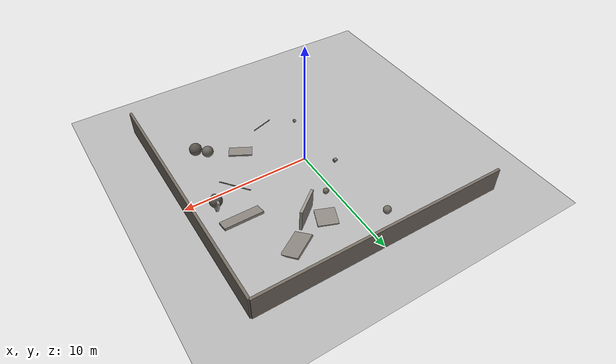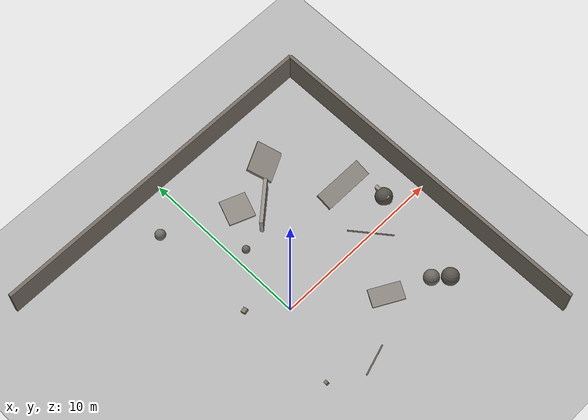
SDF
<sdf version="1.6">
 <world name="earthquake_disaster">
  <model name="ground_plane">
   <static>true</static>
   <pose>0 0 -0.05 0 0 0</pose>
   <link name="link">
    <collision name="col">
     <geometry><plane><normal>0 0 1</normal><size>25 25</size></plane></geometry>
     <surface><friction><ode><mu>2.0</mu><mu2>2.0</mu2></ode></friction></surface>
    </collision>
    <visual name="vis">
     <geometry><plane><normal>0 0 1</normal><size>25 25</size></plane></geometry>
     <material><ambient>0.7 0.7 0.7 1</ambient><diffuse>0.7 0.7 0.7 1</diffuse></material>
    </visual>
   </link>
  </model>
  <model name="boundary_north">
   <static>true</static>
   <pose>0 10 1 0 0 0</pose>
   <link name="link">
    <collision name="col"><geometry><box><size>20 0.2 2</size></box></geometry></collision>
    <visual name="vis">
     <geometry><box><size>20 0.2 2</size></box></geometry>
     <material><ambient>0.45 0.42 0.38 1</ambient><diffuse>0.45 0.42 0.38 1</diffuse></material>
    </visual>
   </link>
  </model>
  <model name="boundary_east">
   <static>true</static>
   <pose>10 0 1 0 0 1.5708</pose>
   <link name="link">
    <collision name="col"><geometry><box><size>20 0.2 2</size></box></geometry></collision>
    <visual name="vis">
     <geometry><box><size>20 0.2 2</size></box></geometry>
     <material><ambient>0.45 0.42 0.38 1</ambient><diffuse>0.45 0.42 0.38 1</diffuse></material>
    </visual>
   </link>
  </model>
  <model name="slab_2">
   <static>true</static>
   <pose>4.0 -3.0 0.3722 0.1 0.0 -0.5</pose>
   <link name="link">
    <collision name="col">
     <geometry><box><size>1.8 1.0 0.12</size></box></geometry>
     <surface><friction><ode><mu>2.0</mu><mu2>2.0</mu2></ode></friction></surface>
    </collision>
    <visual name="vis">
     <geometry><box><size>1.8 1.0 0.12</size></box></geometry>
     <material><ambient>0.55 0.53 0.5 1</ambient><diffuse>0.55 0.53 0.5 1</diffuse></material>
    </visual>
   </link>
  </model>
  <model name="slab_4">
   <static>true</static>
   <pose>2.0 6.0 0.2761 0.0 0.0 1.2</pose>
   <link name="link">
    <collision name="col">
     <geometry><box><size>1.5 1.5 0.1</size></box></geometry>
     <surface><friction><ode><mu>2.0</mu><mu2>2.0</mu2></ode></friction></surface>
    </collision>
    <visual name="vis">
     <geometry><box><size>1.5 1.5 0.1</size></box></geometry>
     <material><ambient>0.55 0.53 0.5 1</ambient><diffuse>0.55 0.53 0.5 1</diffuse></material>
    </visual>
   </link>
  </model>
  <model name="slab_5">
   <static>true</static>
   <pose>7.0 3.0 0.3016 0.3 0.0 0.0</pose>
   <link name="link">
    <collision name="col">
     <geometry><box><size>3.0 1.0 0.18</size></box></geometry>
     <surface><friction><ode><mu>2.0</mu><mu2>2.0</mu2></ode></friction></surface>
    </collision>
    <visual name="vis">
     <geometry><box><size>3.0 1.0 0.18</size></box></geometry>
     <material><ambient>0.55 0.53 0.5 1</ambient><diffuse>0.55 0.53 0.5 1</diffuse></material>
    </visual>
   </link>
  </model>
  <model name="slab_tilted_1">
   <static>true</static>
   <pose>5.0 7.0 0.2663 0.4 0.15 0.5</pose>
   <link name="link">
    <collision name="col">
     <geometry><box><size>2.0 1.5 0.15</size></box></geometry>
     <surface><friction><ode><mu>2.0</mu><mu2>2.0</mu2></ode></friction></surface>
    </collision>
    <visual name="vis">
     <geometry><box><size>2.0 1.5 0.15</size></box></geometry>
     <material><ambient>0.55 0.53 0.5 1</ambient><diffuse>0.55 0.53 0.5 1</diffuse></material>
    </visual>
   </link>
  </model>
  <model name="wall_broken_2">
   <static>true</static>
   <pose>3.0 5.0 0.7000 0.0 -0.1 0.7</pose>
   <link name="link">
    <collision name="col">
     <geometry><box><size>2.5 0.2 1.6</size></box></geometry>
     <surface><friction><ode><mu>2.0</mu><mu2>2.0</mu2></ode></friction></surface>
    </collision>
    <visual name="vis">
     <geometry><box><size>2.5 0.2 1.6</size></box></geometry>
     <material><ambient>0.6 0.58 0.55 1</ambient><diffuse>0.6 0.58 0.55 1</diffuse></material>
    </visual>
   </link>
  </model>
  <model name="wall_fragment_2">
   <static>true</static>
   <pose>8.0 1.0 0.5765 -0.2 0.1 1.5</pose>
   <link name="link">
    <collision name="col">
     <geometry><box><size>1.0 0.2 0.8</size></box></geometry>
     <surface><friction><ode><mu>2.0</mu><mu2>2.0</mu2></ode></friction></surface>
    </collision>
    <visual name="vis">
     <geometry><box><size>1.0 0.2 0.8</size></box></geometry>
     <material><ambient>0.6 0.58 0.55 1</ambient><diffuse>0.6 0.58 0.55 1</diffuse></material>
    </visual>
   </link>
  </model>
  <model name="rubble_3_4">
   <static>true</static>
   <pose>-1.7675196615228985 1.5723496434812192 0.2559 -0.171751620480491 -0.05937582447032844 0.18411515591264183</pose>
   <link name="link">
    <collision name="col">
     <geometry><box><size>0.28527339660162554 0.2471963714471273 0.21190694499419407</size></box></geometry>
     <surface><friction><ode><mu>2.0</mu><mu2>2.0</mu2></ode></friction></surface>
    </collision>
    <visual name="vis">
     <geometry><box><size>0.28527339660162554 0.2471963714471273 0.21190694499419407</size></box></geometry>
     <material>
      <ambient>0.5197391468828612 0.46973914688286117 0.4197391468828612 1</ambient>
      <diffuse>0.5197391468828612 0.46973914688286117 0.4197391468828612 1</diffuse>
     </material>
    </visual>
   </link>
  </model>
  <model name="rock_0">
   <static>true</static>
   <pose>-1.9364300963693424 7.764941500475615 0.3594 0.22750418366957165 0.21150374299508146 3.005977392299374</pose>
   <link name="link">
    <collision name="col">
     <geometry><sphere><radius>0.3060812232688608</radius></sphere></geometry>
     <surface><friction><ode><mu>2.0</mu><mu2>2.0</mu2></ode></friction></surface>
    </collision>
    <visual name="vis">
     <geometry><sphere><radius>0.3060812232688608</radius></sphere></geometry>
     <material>
      <ambient>0.45681412038971386 0.43681412038971384 0.4068141203897139 1</ambient>
      <diffuse>0.45681412038971386 0.43681412038971384 0.4068141203897139 1</diffuse>
     </material>
    </visual>
   </link>
  </model>
  <model name="rock_1">
   <static>true</static>
   <pose>7.9267630318834215 0.8922931744898914 0.6176 0.1483539127472821 0.4843546824845794 1.8186261131630446</pose>
   <link name="link">
    <collision name="col">
     <geometry><sphere><radius>0.4873633101185304</radius></sphere></geometry>
     <surface><friction><ode><mu>2.0</mu><mu2>2.0</mu2></ode></friction></surface>
    </collision>
    <visual name="vis">
     <geometry><sphere><radius>0.4873633101185304</radius></sphere></geometry>
     <material>
      <ambient>0.3309593650548128 0.3109593650548128 0.28095936505481284 1</ambient>
      <diffuse>0.3309593650548128 0.3109593650548128 0.28095936505481284 1</diffuse>
     </material>
    </visual>
   </link>
  </model>
  <model name="rock_2">
   <static>true</static>
   <pose>0.6751232219883878 3.9676089660650256 0.3286 0.2514251914597568 0.4263599460241427 0.4943387657299775</pose>
   <link name="link">
    <collision name="col">
     <geometry><sphere><radius>0.22286610916299324</radius></sphere></geometry>
     <surface><friction><ode><mu>2.0</mu><mu2>2.0</mu2></ode></friction></surface>
    </collision>
    <visual name="vis">
     <geometry><sphere><radius>0.22286610916299324</radius></sphere></geometry>
     <material>
      <ambient>0.41683551889179427 0.39683551889179425 0.3668355188917943 1</ambient>
      <diffuse>0.41683551889179427 0.39683551889179425 0.3668355188917943 1</diffuse>
     </material>
    </visual>
   </link>
  </model>
  <model name="rock_4">
   <static>true</static>
   <pose>6.244597026071 -4.060554435382002 0.6633 0.20961245766793624 0.29183614464561236 1.641537726770351</pose>
   <link name="link">
    <collision name="col">
     <geometry><sphere><radius>0.43780766141337646</radius></sphere></geometry>
     <surface><friction><ode><mu>2.0</mu><mu2>2.0</mu2></ode></friction></surface>
    </collision>
    <visual name="vis">
     <geometry><sphere><radius>0.43780766141337646</radius></sphere></geometry>
     <material>
      <ambient>0.42387630206642063 0.4038763020664206 0.37387630206642064 1</ambient>
      <diffuse>0.42387630206642063 0.4038763020664206 0.37387630206642064 1</diffuse>
     </material>
    </visual>
   </link>
  </model>
  <model name="rock_5">
   <static>true</static>
   <pose>6.955300123782836 -4.731852809223417 0.7072 0.19789292339562725 0.33584511147998564 0.9419908305681134</pose>
   <link name="link">
    <collision name="col">
     <geometry><sphere><radius>0.4864767203157659</radius></sphere></geometry>
     <surface><friction><ode><mu>2.0</mu><mu2>2.0</mu2></ode></friction></surface>
    </collision>
    <visual name="vis">
     <geometry><sphere><radius>0.4864767203157659</radius></sphere></geometry>
     <material>
      <ambient>0.3477371905231692 0.3277371905231692 0.2977371905231692 1</ambient>
      <diffuse>0.3477371905231692 0.3277371905231692 0.2977371905231692 1</diffuse>
     </material>
    </visual>
   </link>
  </model>
  <model name="beam_2">
   <static>true</static>
   <pose>6.0 0.0 0.2855 0.5 1.57 -0.4</pose>
   <link name="link">
    <collision name="col">
     <geometry><cylinder><radius>0.04</radius><length>2.5</length></cylinder></geometry>
     <surface><friction><ode><mu>1.5</mu><mu2>1.5</mu2></ode></friction></surface>
    </collision>
    <visual name="vis">
     <geometry><cylinder><radius>0.04</radius><length>2.5</length></cylinder></geometry>
     <material><ambient>0.45 0.42 0.4 1</ambient><diffuse>0.45 0.42 0.4 1</diffuse></material>
    </visual>
   </link>
  </model>
  <model name="beam_4">
   <static>true</static>
   <pose>1.0 -5.0 0.2953 -0.3 1.57 0.0</pose>
   <link name="link">
    <collision name="col">
     <geometry><cylinder><radius>0.04</radius><length>1.8</length></cylinder></geometry>
     <surface><friction><ode><mu>1.5</mu><mu2>1.5</mu2></ode></friction></surface>
    </collision>
    <visual name="vis">
     <geometry><cylinder><radius>0.04</radius><length>1.8</length></cylinder></geometry>
     <material><ambient>0.45 0.42 0.4 1</ambient><diffuse>0.45 0.42 0.4 1</diffuse></material>
    </visual>
   </link>
  </model>
  <model name="dynamic_debris_2">
   <static>false</static>
   <pose>-1.5656749351333925 -4.107038011713216 0.2657 0.3517699625436855 0.30583888286297506 3.099911819802924</pose>
   <link name="link">
    <collision name="col">
     <geometry><box><size>0.18004939455677685 0.21605927346813222 0.14403951564542147</size></box></geometry>
     <surface><friction><ode><mu>1.5</mu><mu2>1.5</mu2></ode></friction></surface>
    </collision>
    <visual name="vis">
     <geometry><box><size>0.18004939455677685 0.21605927346813222 0.14403951564542147</size></box></geometry>
     <material><ambient>0.5 0.45 0.4 1</ambient><diffuse>0.5 0.45 0.4 1</diffuse></material>
    </visual>
   </link>
  </model>
 </world>
</sdf>
